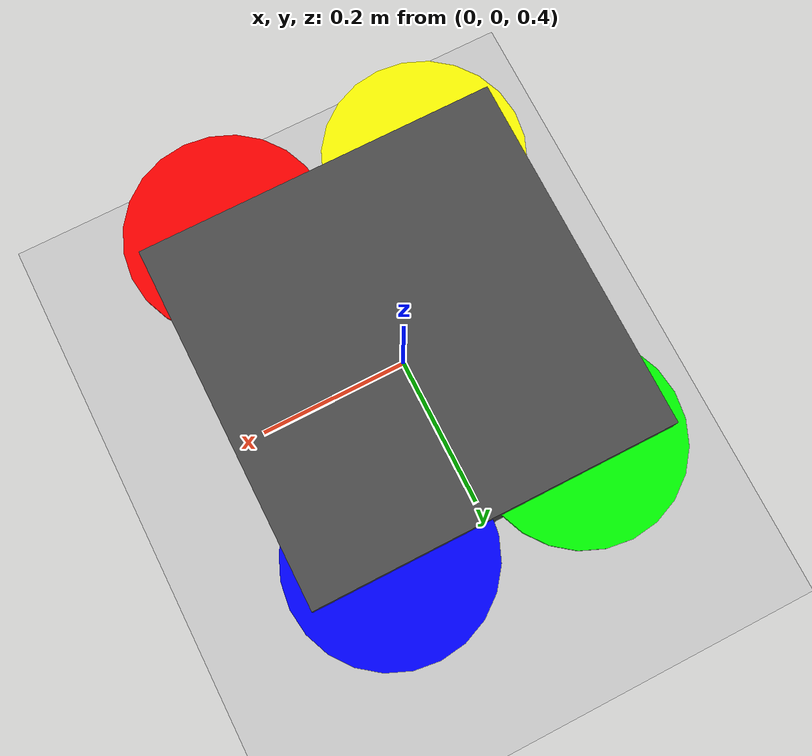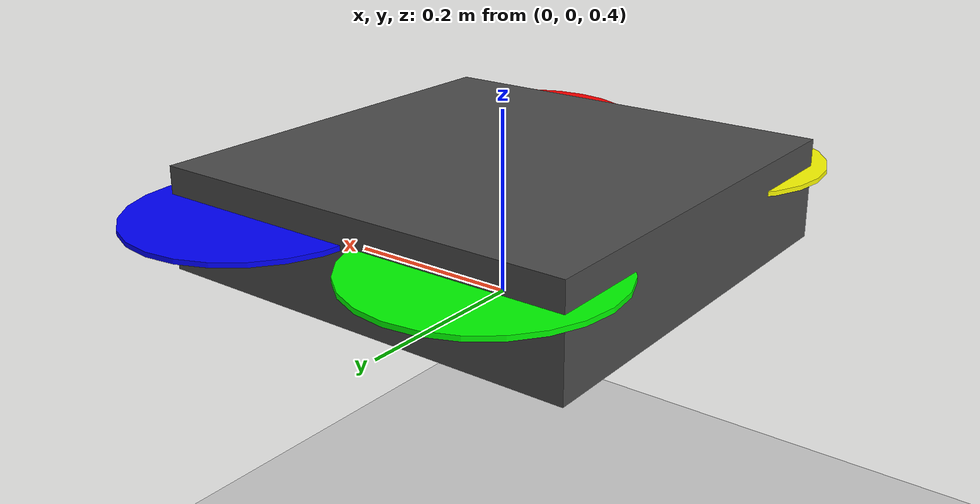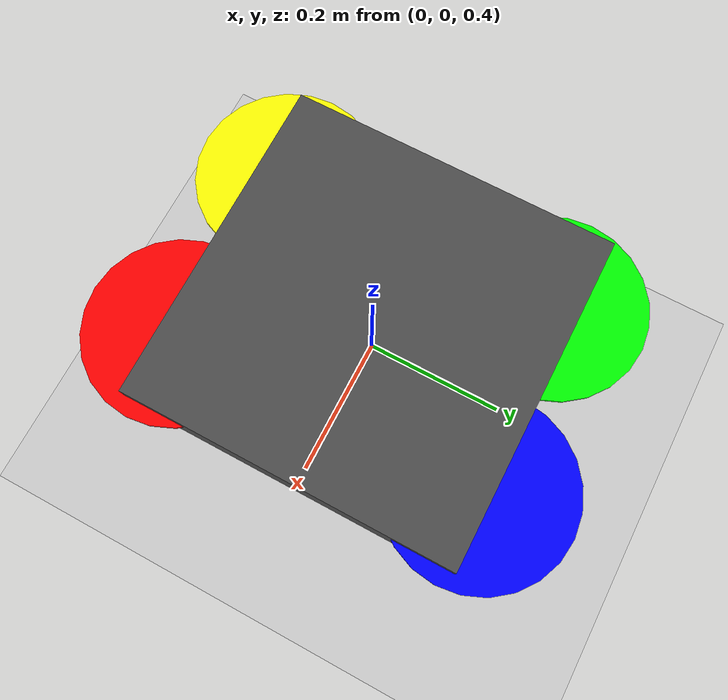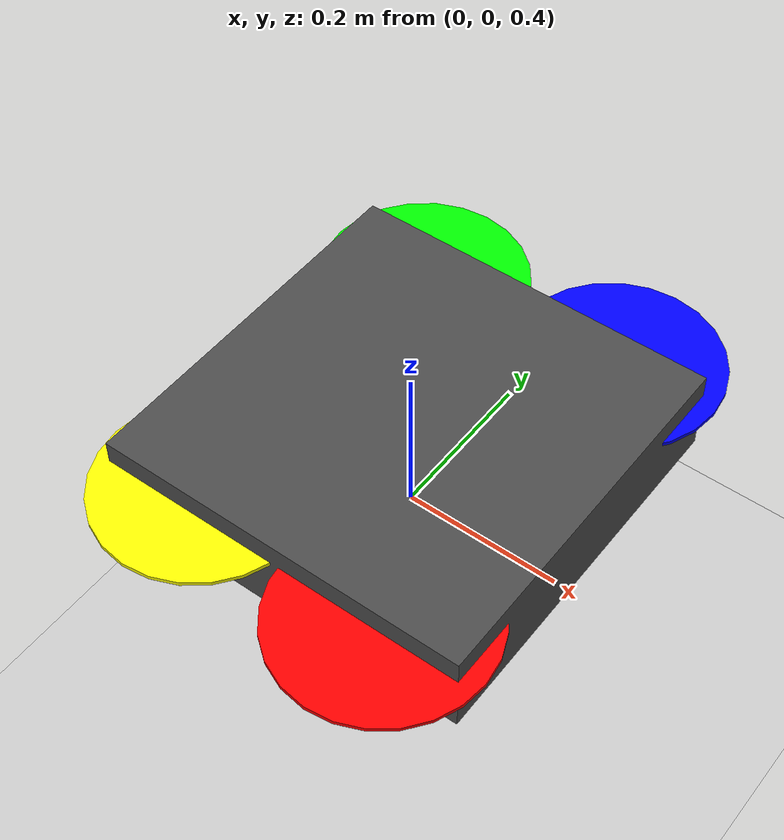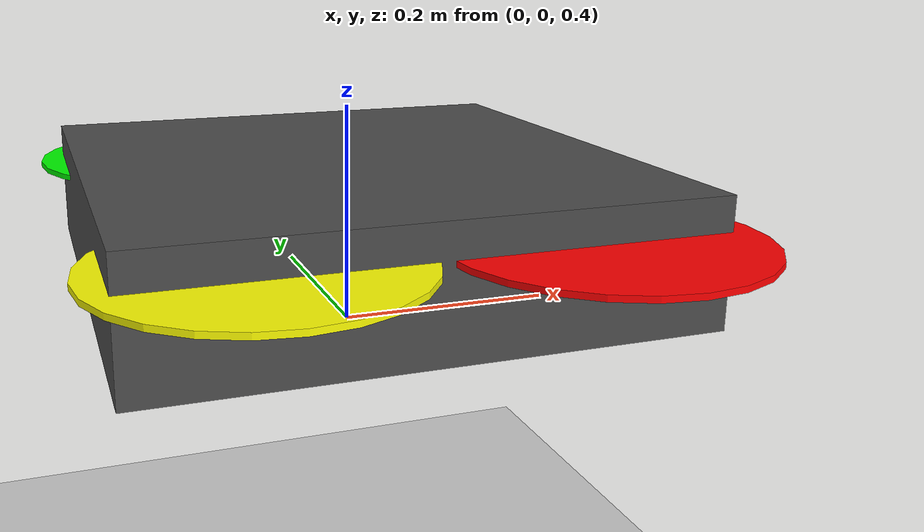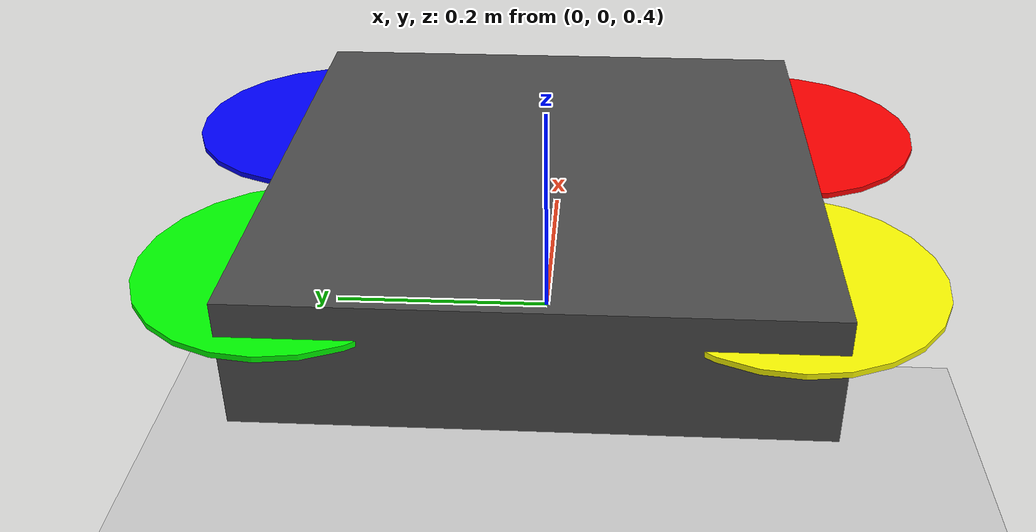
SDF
<?xml version="1.0" ?>
<sdf version="1.8">
  <world name="minzanix_world">
    <!-- Physics -->
    <physics name="1ms" type="ignored">
      <max_step_size>0.001</max_step_size>
      <real_time_factor>1.0</real_time_factor>
    </physics>

    <!-- Plugins -->
    <plugin
      filename="gz-sim-physics-system"
      name="gz::sim::systems::Physics">
    </plugin>
    <plugin
      filename="gz-sim-user-commands-system"
      name="gz::sim::systems::UserCommands">
    </plugin>
    <plugin
      filename="gz-sim-scene-broadcaster-system"
      name="gz::sim::systems::SceneBroadcaster">
    </plugin>
    <plugin
      filename="gz-sim-sensors-system"
      name="gz::sim::systems::Sensors">
      <render_engine>ogre2</render_engine>
    </plugin>

    <!-- Lighting -->
    <light type="directional" name="sun">
      <cast_shadows>true</cast_shadows>
      <pose>0 0 10 0 0 0</pose>
      <diffuse>0.8 0.8 0.8 1</diffuse>
      <specular>0.2 0.2 0.2 1</specular>
      <attenuation>
        <range>1000</range>
        <constant>0.9</constant>
        <linear>0.01</linear>
        <quadratic>0.001</quadratic>
      </attenuation>
      <direction>-0.5 0.1 -0.9</direction>
    </light>

    <!-- Ground Plane -->
    <model name="ground_plane">
      <static>true</static>
      <link name="link">
        <collision name="collision">
          <geometry>
            <plane>
              <normal>0 0 1</normal>
            </plane>
          </geometry>
        </collision>
        <visual name="visual">
          <geometry>
            <plane>
              <normal>0 0 1</normal>
              <size>100 100</size>
            </plane>
          </geometry>
          <material>
            <ambient>0.8 0.8 0.8 1</ambient>
            <diffuse>0.8 0.8 0.8 1</diffuse>
            <specular>0.8 0.8 0.8 1</specular>
          </material>
        </visual>
      </link>
    </model>

    <!-- X500 Quadcopter -->
    <model name="x500">
      <pose>0 0 0.5 0 0 0</pose>

      <!-- Base link (body) -->
      <link name="base_link">
        <inertial>
          <pose>0 0 0 0 0 0</pose>
          <mass>1.5</mass>
          <inertia>
            <ixx>0.029125</ixx>
            <ixy>0</ixy>
            <ixz>0</ixz>
            <iyy>0.029125</iyy>
            <iyz>0</iyz>
            <izz>0.055225</izz>
          </inertia>
        </inertial>

        <visual name="visual">
          <geometry>
            <box>
              <size>0.47 0.47 0.11</size>
            </box>
          </geometry>
          <material>
            <ambient>0.2 0.2 0.2 1</ambient>
            <diffuse>0.3 0.3 0.3 1</diffuse>
          </material>
        </visual>

        <collision name="collision">
          <geometry>
            <box>
              <size>0.47 0.47 0.11</size>
            </box>
          </geometry>
        </collision>

        <!-- IMU Sensor -->
        <sensor name="imu_sensor" type="imu">
          <always_on>1</always_on>
          <update_rate>250</update_rate>
          <visualize>true</visualize>
          <topic>/imu</topic>
          <enable_metrics>false</enable_metrics>
          <imu>
            <angular_velocity>
              <x>
                <noise type="gaussian">
                  <mean>0.0</mean>
                  <stddev>0.009</stddev>
                </noise>
              </x>
              <y>
                <noise type="gaussian">
                  <mean>0.0</mean>
                  <stddev>0.009</stddev>
                </noise>
              </y>
              <z>
                <noise type="gaussian">
                  <mean>0.0</mean>
                  <stddev>0.009</stddev>
                </noise>
              </z>
            </angular_velocity>
            <linear_acceleration>
              <x>
                <noise type="gaussian">
                  <mean>0.0</mean>
                  <stddev>0.017</stddev>
                </noise>
              </x>
              <y>
                <noise type="gaussian">
                  <mean>0.0</mean>
                  <stddev>0.017</stddev>
                </noise>
              </y>
              <z>
                <noise type="gaussian">
                  <mean>0.0</mean>
                  <stddev>0.017</stddev>
                </noise>
              </z>
            </linear_acceleration>
          </imu>
        </sensor>

        <!-- Barometer Sensor -->
        <sensor name="air_pressure_sensor" type="air_pressure">
          <always_on>1</always_on>
          <update_rate>50</update_rate>
          <visualize>false</visualize>
          <topic>/air_pressure</topic>
          <air_pressure>
            <pressure>
              <noise type="gaussian">
                <mean>0.0</mean>
                <stddev>1.0</stddev>
              </noise>
            </pressure>
          </air_pressure>
        </sensor>
      </link>

      <!-- Rotor 0 (Front Right) -->
      <link name="rotor_0">
        <pose>0.13 -0.22 0.023 0 0 0</pose>
        <inertial>
          <mass>0.005</mass>
          <inertia>
            <ixx>9.75e-07</ixx>
            <iyy>0.000166704</iyy>
            <izz>0.000167604</izz>
          </inertia>
        </inertial>
        <visual name="visual">
          <geometry>
            <cylinder>
              <radius>0.128</radius>
              <length>0.005</length>
            </cylinder>
          </geometry>
          <material>
            <ambient>1 0 0 1</ambient>
            <diffuse>1 0 0 1</diffuse>
          </material>
        </visual>
      </link>

      <joint name="rotor_0_joint" type="revolute">
        <parent>base_link</parent>
        <child>rotor_0</child>
        <axis>
          <xyz>0 0 1</xyz>
          <limit>
            <lower>-1e+12</lower>
            <upper>1e+12</upper>
            <effort>-1</effort>
            <velocity>-1</velocity>
          </limit>
        </axis>
      </joint>

      <!-- Rotor 1 (Rear Left) -->
      <link name="rotor_1">
        <pose>-0.13 0.20 0.023 0 0 0</pose>
        <inertial>
          <mass>0.005</mass>
          <inertia>
            <ixx>9.75e-07</ixx>
            <iyy>0.000166704</iyy>
            <izz>0.000167604</izz>
          </inertia>
        </inertial>
        <visual name="visual">
          <geometry>
            <cylinder>
              <radius>0.128</radius>
              <length>0.005</length>
            </cylinder>
          </geometry>
          <material>
            <ambient>0 1 0 1</ambient>
            <diffuse>0 1 0 1</diffuse>
          </material>
        </visual>
      </link>

      <joint name="rotor_1_joint" type="revolute">
        <parent>base_link</parent>
        <child>rotor_1</child>
        <axis>
          <xyz>0 0 1</xyz>
          <limit>
            <lower>-1e+12</lower>
            <upper>1e+12</upper>
            <effort>-1</effort>
            <velocity>-1</velocity>
          </limit>
        </axis>
      </joint>

      <!-- Rotor 2 (Front Left) -->
      <link name="rotor_2">
        <pose>0.13 0.22 0.023 0 0 0</pose>
        <inertial>
          <mass>0.005</mass>
          <inertia>
            <ixx>9.75e-07</ixx>
            <iyy>0.000166704</iyy>
            <izz>0.000167604</izz>
          </inertia>
        </inertial>
        <visual name="visual">
          <geometry>
            <cylinder>
              <radius>0.128</radius>
              <length>0.005</length>
            </cylinder>
          </geometry>
          <material>
            <ambient>0 0 1 1</ambient>
            <diffuse>0 0 1 1</diffuse>
          </material>
        </visual>
      </link>

      <joint name="rotor_2_joint" type="revolute">
        <parent>base_link</parent>
        <child>rotor_2</child>
        <axis>
          <xyz>0 0 1</xyz>
          <limit>
            <lower>-1e+12</lower>
            <upper>1e+12</upper>
            <effort>-1</effort>
            <velocity>-1</velocity>
          </limit>
        </axis>
      </joint>

      <!-- Rotor 3 (Rear Right) -->
      <link name="rotor_3">
        <pose>-0.13 -0.20 0.023 0 0 0</pose>
        <inertial>
          <mass>0.005</mass>
          <inertia>
            <ixx>9.75e-07</ixx>
            <iyy>0.000166704</iyy>
            <izz>0.000167604</izz>
          </inertia>
        </inertial>
        <visual name="visual">
          <geometry>
            <cylinder>
              <radius>0.128</radius>
              <length>0.005</length>
            </cylinder>
          </geometry>
          <material>
            <ambient>1 1 0 1</ambient>
            <diffuse>1 1 0 1</diffuse>
          </material>
        </visual>
      </link>

      <joint name="rotor_3_joint" type="revolute">
        <parent>base_link</parent>
        <child>rotor_3</child>
        <axis>
          <xyz>0 0 1</xyz>
          <limit>
            <lower>-1e+12</lower>
            <upper>1e+12</upper>
            <effort>-1</effort>
            <velocity>-1</velocity>
          </limit>
        </axis>
      </joint>

      <!-- Motor Model Plugins -->
      <plugin filename="gz-sim-multicopter-motor-model-system"
        name="gz::sim::systems::MulticopterMotorModel">
        <jointName>rotor_0_joint</jointName>
        <linkName>rotor_0</linkName>
        <turningDirection>cw</turningDirection>
        <timeConstantUp>0.0125</timeConstantUp>
        <timeConstantDown>0.025</timeConstantDown>
        <maxRotVelocity>1100.0</maxRotVelocity>
        <motorConstant>8.54858e-06</motorConstant>
        <momentConstant>0.016</momentConstant>
        <commandSubTopic>command/motor_speed</commandSubTopic>
        <motorNumber>0</motorNumber>
        <rotorDragCoefficient>8.06428e-05</rotorDragCoefficient>
        <rollingMomentCoefficient>1e-06</rollingMomentCoefficient>
        <rotorVelocitySlowdownSim>10</rotorVelocitySlowdownSim>
        <motorType>velocity</motorType>
      </plugin>

      <plugin filename="gz-sim-multicopter-motor-model-system"
        name="gz::sim::systems::MulticopterMotorModel">
        <jointName>rotor_1_joint</jointName>
        <linkName>rotor_1</linkName>
        <turningDirection>cw</turningDirection>
        <timeConstantUp>0.0125</timeConstantUp>
        <timeConstantDown>0.025</timeConstantDown>
        <maxRotVelocity>1100.0</maxRotVelocity>
        <motorConstant>8.54858e-06</motorConstant>
        <momentConstant>0.016</momentConstant>
        <commandSubTopic>command/motor_speed</commandSubTopic>
        <motorNumber>1</motorNumber>
        <rotorDragCoefficient>8.06428e-05</rotorDragCoefficient>
        <rollingMomentCoefficient>1e-06</rollingMomentCoefficient>
        <rotorVelocitySlowdownSim>10</rotorVelocitySlowdownSim>
        <motorType>velocity</motorType>
      </plugin>

      <plugin filename="gz-sim-multicopter-motor-model-system"
        name="gz::sim::systems::MulticopterMotorModel">
        <jointName>rotor_2_joint</jointName>
        <linkName>rotor_2</linkName>
        <turningDirection>ccw</turningDirection>
        <timeConstantUp>0.0125</timeConstantUp>
        <timeConstantDown>0.025</timeConstantDown>
        <maxRotVelocity>1100.0</maxRotVelocity>
        <motorConstant>8.54858e-06</motorConstant>
        <momentConstant>0.016</momentConstant>
        <commandSubTopic>command/motor_speed</commandSubTopic>
        <motorNumber>2</motorNumber>
        <rotorDragCoefficient>8.06428e-05</rotorDragCoefficient>
        <rollingMomentCoefficient>1e-06</rollingMomentCoefficient>
        <rotorVelocitySlowdownSim>10</rotorVelocitySlowdownSim>
        <motorType>velocity</motorType>
      </plugin>

      <plugin filename="gz-sim-multicopter-motor-model-system"
        name="gz::sim::systems::MulticopterMotorModel">
        <jointName>rotor_3_joint</jointName>
        <linkName>rotor_3</linkName>
        <turningDirection>ccw</turningDirection>
        <timeConstantUp>0.0125</timeConstantUp>
        <timeConstantDown>0.025</timeConstantDown>
        <maxRotVelocity>1100.0</maxRotVelocity>
        <motorConstant>8.54858e-06</motorConstant>
        <momentConstant>0.016</momentConstant>
        <commandSubTopic>command/motor_speed</commandSubTopic>
        <motorNumber>3</motorNumber>
        <rotorDragCoefficient>8.06428e-05</rotorDragCoefficient>
        <rollingMomentCoefficient>1e-06</rollingMomentCoefficient>
        <rotorVelocitySlowdownSim>10</rotorVelocitySlowdownSim>
        <motorType>velocity</motorType>
      </plugin>
    </model>

  </world>
</sdf>
